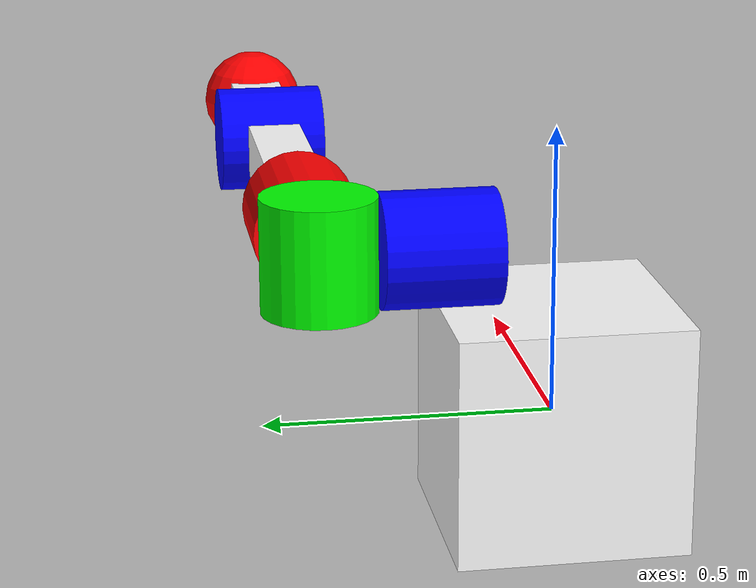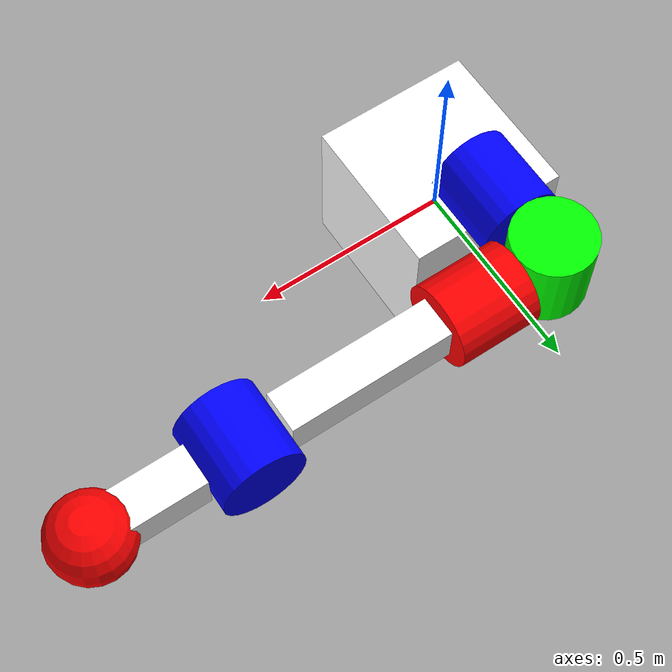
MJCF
<mujoco>
    <option timestep="0.0002" />
    <actuator>
        <motor gear="1" joint="shoulder_1_hinge" name="motor_1" ctrlrange="-1 1" ctrllimited="true"/>
        <motor gear="1" joint="shoulder_2_hinge" name="motor_2" ctrlrange="-1 1" ctrllimited="true"/>
        <motor gear="1" joint="shoulder_3_hinge" name="motor_3" ctrlrange="-1 1" ctrllimited="true"/>
        <motor gear="1" joint="elbow_hinge"      name="motor_4" ctrlrange="-1 1" ctrllimited="true"/>
    </actuator>
    <asset>
        <material name="blue" rgba="0 0 1 1" />
        <material name="green" rgba="0 1 0 1" />
        <material name="red" rgba="1 0 0 1" />
        <material name="white" rgba="1 1 1 1" />
    </asset>
    <worldbody>
        <body name="base" pos="0 0 0">
            <geom type="box" size=".2 .2 .2" material="white"/>

            <body name="shoulder_1_link" pos="0 .2 .3">
                <joint name="shoulder_1_hinge" axis="0 1 0"/>
                <geom type="cylinder" size=".1 .1" euler="90 0 0" material="blue"/>
                <inertial pos="0 0 0" mass="0.02" diaginertia="0.01 0.01 0.01"/>

                <body name="shoulder_2_link" pos="0 .2 0">
                    <joint name="shoulder_2_hinge" axis="0 0 1"/>
                    <geom type="cylinder" size=".1 .1" material="green"/>
                    <inertial pos="0 0 0" mass="0.02" diaginertia="0.01 0.01 0.01"/>

                    <body name="shoulder_3_link" pos=".2 0 0" euler="0 0 0">
                        <joint name="shoulder_3_hinge" axis="1 0 0"/>
                        <geom type="cylinder" size=".1 .1" euler="0 90 0" material="red" />
                        <inertial pos="0 0 0" mass="0.02" diaginertia="0.01 0.01 0.01"/>

                        <body name="upper_arm" pos=".3 0 0">
                            <geom type="box" size="0.2 .05 .05" material="white" />

                            <body name="elbow" pos=".3 0 0">
                                <joint name="elbow_hinge" axis="0 1 0" />
                                <geom type="cylinder" size=".1 .1" euler="90 0 0" material="blue"/>

                                <body name="lower_arm" pos=".2 0 0">
                                    <geom type="box" size=".1 .05 .05" material="white" />
                                    <inertial pos="0 0 0" mass="0.02" diaginertia="0.01 0.01 0.01"/>

                                    <body name="end_effector" pos=".15 0 0">
                                        <geom type="sphere" size=".1" material="red" />
                                    </body>
                                </body>
                            </body>
                        </body>
                    </body>
                </body>
            </body>
        </body>

    </worldbody>
    <contact>
    </contact>
</mujoco>
